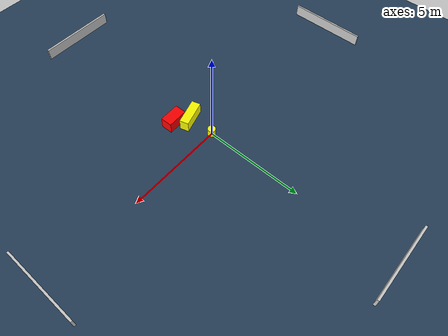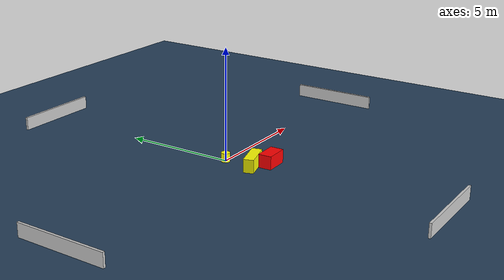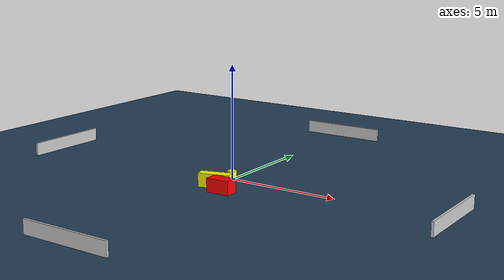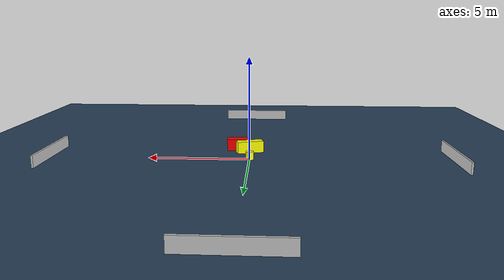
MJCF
<?xml version="1.0" ?>
<mujoco model="generated_environment">
  <option timestep="0.01" integrator="RK4" cone="elliptic"/>
  <default>
    <geom density="1"/>
  </default>
  <asset>
    <texture builtin="gradient" height="3072" name="skybox" rgb1="0.3 0.5 0.7" rgb2="0 0 0" type="skybox" width="512"/>
    <texture builtin="checker" height="300" name="groundplane" rgb1="0.2 0.3 0.4" rgb2="0.1 0.2 0.3" type="2d" width="300"/>
    <material name="groundplane" reflectance="0.2" texrepeat="5 5" texture="groundplane"/>
  </asset>
  <worldbody>
    <light dir="0 0 -1" directional="true" pos="0 0 1.5"/>
    <geom condim="3" friction="0.5 0.005 0.001" material="groundplane" name="floor" pos="0 0 0" size="0 0 0.05" type="plane"/>
    <body name="walls">
      <geom name="wall_1" condim="4" pos="-10.0 0.0 0.3" rgba="0.800000011920929 0.800000011920929 0.800000011920929 1.0" size="0.05 2.0 0.3" type="box"/>
      <geom name="wall_2" condim="4" pos="10.0 0.0 0.3" rgba="0.800000011920929 0.800000011920929 0.800000011920929 1.0" size="0.05 2.0 0.3" type="box"/>
      <geom name="wall_3" condim="4" pos="0.0 -10.0 0.3" rgba="0.800000011920929 0.800000011920929 0.800000011920929 1.0" size="2.0 0.05 0.3" type="box"/>
      <geom name="wall_4" condim="4" pos="0.0 10.0 0.3" rgba="0.800000011920929 0.800000011920929 0.800000011920929 1.0" size="2.0 0.05 0.3" type="box"/>
    </body>
    <body name="robot">
      <joint name="joint_x" type="slide" pos="0 0 0" axis="1 0 0"/>
      <joint name="joint_y" type="slide" pos="0 0 0" axis="0 1 0"/>
      <geom name="robot" type="cylinder" pos="0.0 0.0 0.2" size="0.2 0.2 0.0" mass="5.0" friction="1.0 0.005 0.0001" condim="4" rgba="1.0 1.0 0.0 1.0"/>
    </body>
    <body name="obstacle_1_movable">
      <geom name="obstacle_1_movable" condim="4" pos="0.054706091725755086 -1.345070761635679 0.3" euler="0 0 286.6477061212606" friction="0.0 0.005 0.001" rgba="1.0 1.0 0.0 1.0" size="0.2268660076155602 0.6768597382923194 0.3" type="box" mass="0.1"/>
      <joint type="free"/>
    </body>
    <body name="obstacle_2_static">
      <geom name="obstacle_2_static" condim="4" pos="0.7208912798410552 -1.8302082719894939 0.3" euler="0 0 181.64898759022893" friction="0.0 0.005 0.001" rgba="1.0 0.0 0.0 1.0" size="0.5241131505778676 0.2967455718552861 0.3" type="box"/>
    </body>
  </worldbody>
  <actuator>
    <motor name="actuator_x" joint="joint_x" gear="1" ctrlrange="-1 1"/>
    <motor name="actuator_y" joint="joint_y" gear="1" ctrlrange="-1 1"/>
  </actuator>
</mujoco>
